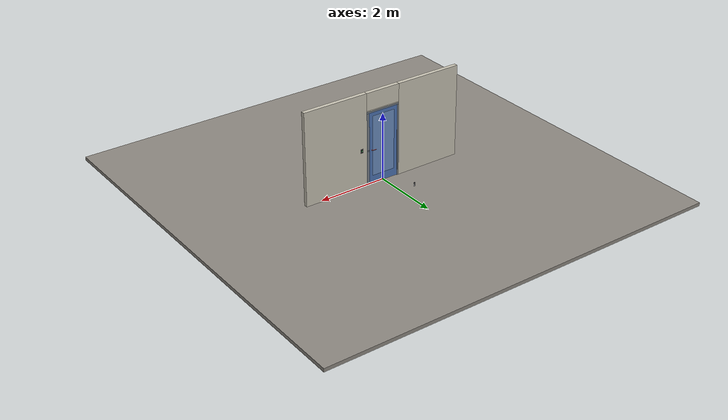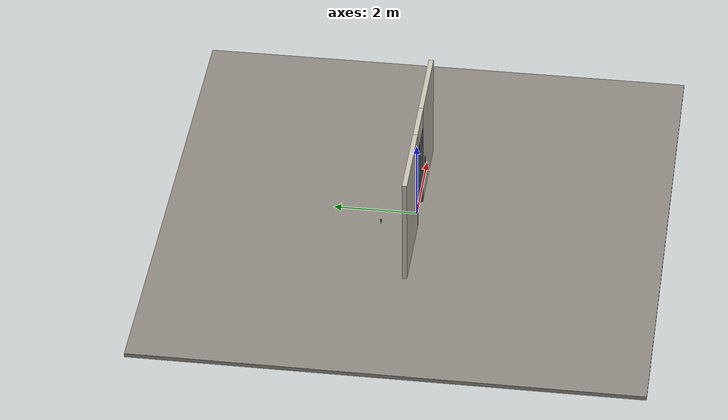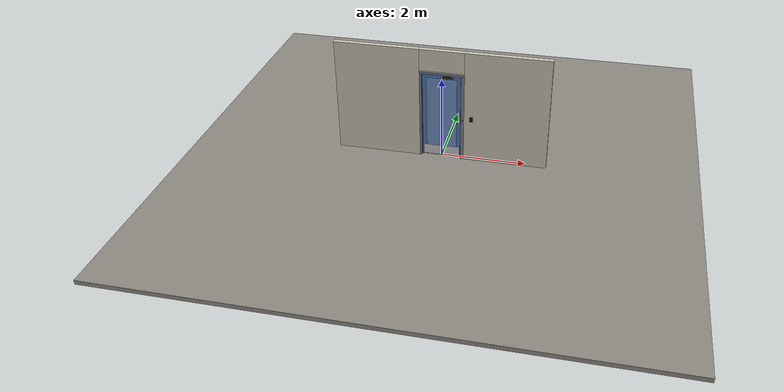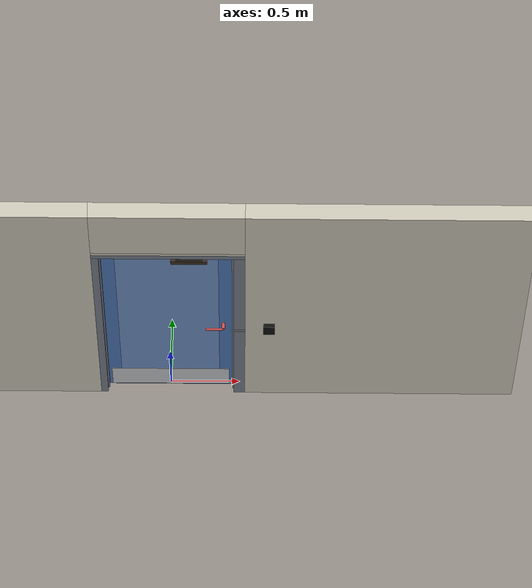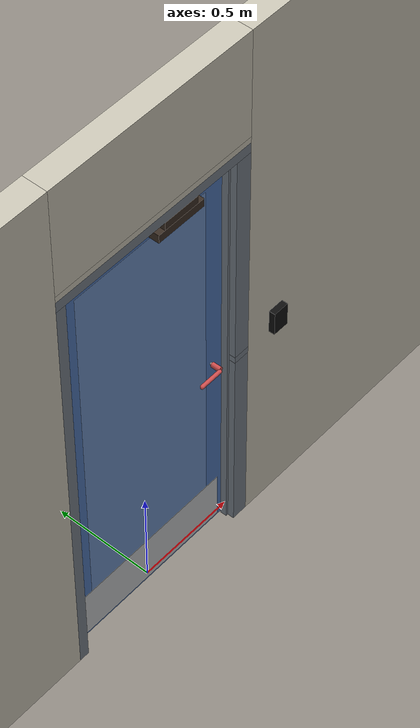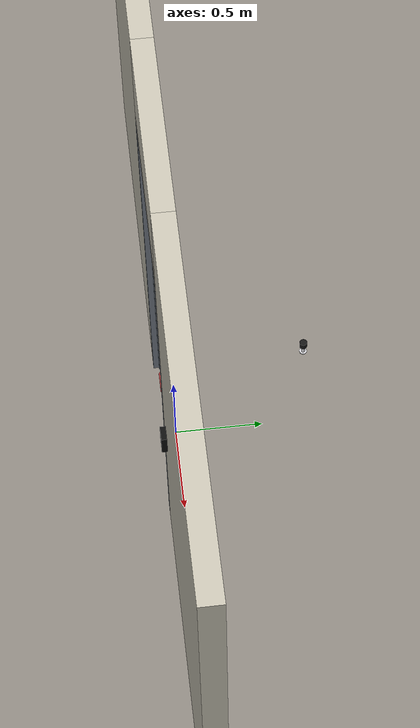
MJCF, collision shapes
<?xml version="1.0" ?>
<mujoco model="db0603_swing_single_full">
  <compiler angle="radian" meshdir="../../hardware" texturedir="../../textures" autolimits="true" inertiafromgeom="false"/>
  <option timestep="0.002" integrator="implicitfast" cone="elliptic" impratio="10" noslip_iterations="3">
    <flag multiccd="enable"/>
  </option>
  <size memory="16M"/>
  <default>
    <geom condim="4" solref="0.005 1" solimp="0.95 0.99 0.001"/>
    <joint solreflimit="0.005 1" solimplimit="0.95 0.99 0.001"/>
    <tendon solreflimit="0.005 1"/>
    <equality solref="0.002 1"/>
  </default>
  <visual>
    <headlight ambient="0.4 0.4 0.4" diffuse="0.7 0.7 0.7" specular="0.2 0.2 0.2"/>
    <quality shadowsize="4096"/>
    <map znear="0.01" zfar="60"/>
  </visual>
  <asset>
    <mesh name="hinge_e22b26c0c1" file="hinge_e22b26c0c1.obj"/>
    <mesh name="hinge_jamb_e1d088f8dc" file="hinge_jamb_e1d088f8dc.obj"/>
    <mesh name="lever_9f02b544cf" file="lever_9f02b544cf.obj"/>
    <material name="mat_floor" rgba="0.55 0.53 0.5 1" specular="0.2" shininess="0.15" reflectance="0"/>
    <material name="mat_wall" rgba="0.78 0.76 0.7 1" specular="0.2" shininess="0.1" reflectance="0"/>
    <material name="mat_leaf" rgba="0.3 0.45 0.7 1" specular="0.2" shininess="0.62" reflectance="0"/>
    <material name="mat_glass" rgba="0.85 0.92 0.95 0.25" specular="0.2" shininess="0.95" reflectance="0.1"/>
    <material name="mat_hinge" rgba="0.65 0.66 0.68 1" specular="0.74" shininess="0.5" reflectance="0.36"/>
    <material name="mat_op_nickel_satin" rgba="0.72 0.7 0.66 1" specular="0.8" shininess="0.65" reflectance="0.4"/>
    <material name="mat_trim" rgba="0.85 0.66 0.3 1" specular="0.8" shininess="0.75" reflectance="0.4"/>
    <material name="mat_bolt" rgba="0.85 0.66 0.3 1" specular="0.8" shininess="0.75" reflectance="0.4"/>
    <material name="mat_maglock" rgba="0.22 0.17 0.13 1" specular="0.8" shininess="0.6" reflectance="0.4"/>
    <material name="mat_frame" rgba="0.45 0.48 0.52 1" specular="0.32" shininess="0.6" reflectance="0.08"/>
    <material name="mat_seal" rgba="0.1 0.1 0.1 1" specular="0.2" shininess="0.1" reflectance="0"/>
    <material name="mat_kick" rgba="0.75 0.76 0.77 1" specular="0.8" shininess="0.65" reflectance="0.4"/>
    <material name="mat_wallreader" rgba="0.05 0.05 0.05 1" specular="0.38" shininess="0.3" reflectance="0.12"/>
    <material name="mat_rex" rgba="0.1 0.6 0.2 1" specular="0.2" shininess="0.6" reflectance="0"/>
    <material name="mat_bumper_stop" rgba="0.08 0.08 0.08 1" specular="0.2" shininess="0.1" reflectance="0"/>
    <material name="mat_stop_base" rgba="0.9 0.9 0.92 1" specular="0.8" shininess="0.9" reflectance="0.4"/>
    <texture name="skybox" type="skybox" builtin="gradient" rgb1="0.6 0.7 0.85" rgb2="0.9 0.92 0.95" width="256" height="256"/>
  </asset>
  <worldbody>
    <light name="sun" pos="1.5 -2.5 4" dir="-0.3 0.5 -0.8" directional="true" diffuse="0.8 0.8 0.8" specular="0.3 0.3 0.3" castshadow="true"/>
    <light name="fill" pos="-1.5 2.5 3" dir="0.3 -0.5 -0.7" directional="true" diffuse="0.35 0.35 0.4" castshadow="false"/>
    <camera name="robot_view" pos="0 -2.666313 1.812087" xyaxes="1 0 0 0 0.26963 0.962964" fovy="52"/>
    <camera name="far_view" pos="0 2.609312 1.812087" xyaxes="-1 0 0 0 -0.26963 0.962964" fovy="52"/>
    <camera name="iso" pos="2.004737 -2.244263 2.234138" xyaxes="0.741536 0.670913 0 -0.242917 0.268487 0.932151" fovy="46"/>
    <camera name="detail_handle" pos="0.4665 -0.877 1.32" xyaxes="0.97561 0.219512 0 -0.070934 0.315262 0.94635" fovy="38"/>
    <geom name="floor" type="box" size="6 6 0.05" pos="0 0 -0.05" material="mat_floor" group="0" contype="1" conaffinity="1" friction="0.8 0.005 0.0001" density="2400"/>
    <geom name="wall_left" type="box" size="0.99475 0.0575 1.3735" pos="-1.50525 -0.0285 1.3735" material="mat_wall" group="0" contype="1" conaffinity="1" friction="0.6 0.005 0.0001" density="800"/>
    <geom name="wall_right" type="box" size="0.97975 0.0575 1.3735" pos="1.52025 -0.0285 1.3735" material="mat_wall" group="0" contype="1" conaffinity="1" friction="0.6 0.005 0.0001" density="800"/>
    <geom name="wall_header" type="box" size="0.5255 0.0575 0.26" pos="0.015 -0.0285 2.487" material="mat_wall" group="0" contype="1" conaffinity="1" friction="0.6 0.005 0.0001" density="800"/>
    <geom name="hinge_0_jamb" type="mesh" mesh="hinge_jamb_e1d088f8dc" pos="-0.4575 0.029 0.259" quat="0 1 0 0" material="mat_hinge" group="1" contype="0" conaffinity="0" density="7850"/>
    <geom name="hinge_1_jamb" type="mesh" mesh="hinge_jamb_e1d088f8dc" pos="-0.4575 0.029 1.076" quat="0 1 0 0" material="mat_hinge" group="1" contype="0" conaffinity="0" density="7850"/>
    <geom name="hinge_2_jamb" type="mesh" mesh="hinge_jamb_e1d088f8dc" pos="-0.4575 0.029 1.963" quat="0 1 0 0" material="mat_hinge" group="1" contype="0" conaffinity="0" density="7850"/>
    <geom name="leaf_maglock_body" type="box" size="0.125 0.025 0.02" pos="0.1565 -0.057 2.082" material="mat_maglock" group="0" contype="1" conaffinity="1" friction="0.6 0.005 0.0001" density="2000"/>
    <geom name="leaf_maglock_bracket" type="box" size="0.09 0.025 0.0225" pos="0.1565 -0.057 2.1245" material="mat_maglock" group="1" contype="0" conaffinity="0" density="7850"/>
    <geom name="jamb_hinge" type="box" size="0.025 0.0575 1.0735" pos="-0.4855 -0.0285 1.0735" material="mat_frame" group="0" contype="1" conaffinity="1" friction="0.6 0.005 0.0001" density="300"/>
    <geom name="strike_1040_wall_n" type="box" size="0.04 0.039075 0.0167" pos="0.5005 -0.046925 1.04" material="mat_frame" group="0" contype="1" conaffinity="1" friction="0.6 0.005 0.0001" density="300"/>
    <geom name="strike_1040_wall_p" type="box" size="0.04 0.008 0.0167" pos="0.5005 0.01585 1.04" material="mat_frame" group="0" contype="1" conaffinity="1" friction="0.6 0.005 0.0001" density="300"/>
    <geom name="strike_1040_ramp" type="box" size="0.04 0.01649 0.0167" pos="0.503736 0.022234 1.04" quat="0.977148 0 0 -0.212558" material="mat_frame" group="0" contype="1" conaffinity="1" friction="0.12 0.005 0.0001" density="300"/>
    <geom name="strike_1040_back" type="box" size="0.03165 0.00785 0.0167" pos="0.50885 0 1.04" material="mat_frame" group="0" contype="1" conaffinity="1" friction="0.6 0.005 0.0001" density="300"/>
    <geom name="jamb_strike_0" type="box" size="0.04 0.0575 0.51165" pos="0.5005 -0.0285 0.51165" material="mat_frame" group="0" contype="1" conaffinity="1" friction="0.6 0.005 0.0001" density="300"/>
    <geom name="jamb_strike_1" type="box" size="0.04 0.0575 0.54515" pos="0.5005 -0.0285 1.60185" material="mat_frame" group="0" contype="1" conaffinity="1" friction="0.6 0.005 0.0001" density="300"/>
    <geom name="jamb_head" type="box" size="0.5255 0.0575 0.025" pos="0.015 -0.0285 2.172" material="mat_frame" group="0" contype="1" conaffinity="1" friction="0.6 0.005 0.0001" density="300"/>
    <geom name="head_stud" type="box" size="0.5255 0.0575 0.015" pos="0.015 -0.0285 2.212" material="mat_wall" group="0" contype="1" conaffinity="1" friction="0.6 0.005 0.0001" density="500"/>
    <geom name="stop_hinge" type="box" size="0.0055 0.016 1.0735" pos="-0.455 -0.0385 1.0735" material="mat_frame" group="0" contype="1" conaffinity="1" friction="0.6 0.005 0.0001" density="300"/>
    <geom name="stop_strike" type="box" size="0.0055 0.016 1.0735" pos="0.455 -0.0385 1.0735" material="mat_frame" group="0" contype="1" conaffinity="1" friction="0.6 0.005 0.0001" density="300"/>
    <geom name="stop_head" type="box" size="0.4605 0.016 0.0055" pos="0 -0.0385 2.1415" material="mat_frame" group="0" contype="1" conaffinity="1" friction="0.6 0.005 0.0001" density="300"/>
    <geom name="seal_hinge" type="box" size="0.004 0.004 1.0735" pos="-0.4575 -0.026 1.0735" material="mat_seal" group="1" contype="0" conaffinity="0" density="1100"/>
    <geom name="seal_strike" type="box" size="0.004 0.004 1.0735" pos="0.4575 -0.026 1.0735" material="mat_seal" group="1" contype="0" conaffinity="0" density="1100"/>
    <geom name="seal_head" type="box" size="0.4405 0.004 0.008" pos="0 -0.026 2.135" material="mat_seal" group="1" contype="0" conaffinity="0" density="1100"/>
    <geom name="wall_reader" type="box" size="0.04 0.015 0.06" pos="0.7105 -0.101 1.1" material="mat_wallreader" group="0" contype="1" conaffinity="1" friction="0.6 0.005 0.0001" density="1000"/>
    <geom name="rex_plate" type="box" size="0.04 0.003 0.06" pos="0.7105 0.032 1.1" material="mat_wallreader" group="1" contype="0" conaffinity="0" density="1000"/>
    <geom name="door_stop_base" type="cylinder" size="0.022 0.003" pos="-0.4735 0.8059 0.003" material="mat_stop_base" group="0" contype="1" conaffinity="1" friction="0.6 0.005 0.0001" density="7850"/>
    <geom name="door_stop_post" type="cylinder" size="0.012 0.0245" pos="-0.4735 0.8059 0.0305" material="mat_stop_base" group="0" contype="1" conaffinity="1" friction="0.6 0.005 0.0001" density="7850"/>
    <geom name="door_stop_bumper" type="cylinder" size="0.022 0.02" pos="-0.4735 0.8059 0.075" material="mat_bumper_stop" group="0" contype="1" conaffinity="1" friction="0.6 0.005 0.0001" density="1100"/>
    <site name="approach_point" pos="0 -1.5 0" quat="1 0 0 0" size="0.05" rgba="0.2 0.9 0.2 0.5" group="4"/>
    <site name="goal_point" pos="0 1.5 0" quat="1 0 0 0" size="0.05" rgba="0.2 0.9 0.2 0.5" group="4"/>
    <site name="door_plane_center" pos="0 0 1.0735" quat="1 0 0 0" size="0.02" rgba="0.2 0.9 0.2 0.5" group="4"/>
    <body name="rex_button" pos="0.7105 0.035 1.1">
      <inertial pos="0 0.004 0" mass="0.010053" quat="0 0 0.707107 -0.707107" diaginertia="0.000001059 0.000001059 0.000002011"/>
      <joint name="rex_button_slide" type="slide" axis="0 -1 0" limited="true" range="0 0.004" damping="1" stiffness="1500" springref="-0.004" armature="0.1"/>
      <geom name="rex_button_geom" type="cylinder" size="0.02 0.004" pos="0 0.004 0" quat="0.707107 -0.707107 0 0" material="mat_rex" group="0" contype="1" conaffinity="1" friction="0.6 0.005 0.0001" density="1000"/>
    </body>
    <body name="leaf" pos="-0.4605 0 0">
      <inertial pos="0.449607 -0.002803 0.991114" mass="43.42234" quat="-0.499437 0.504079 0.497726 0.498734" diaginertia="3.129349052 19.527300945 22.638001187"/>
      <joint name="leaf_hinge" type="hinge" axis="0 0 1" pos="0.003 0.029 0" limited="true" range="0 1.570796" solreflimit="0.02 1" damping="0.318966" frictionloss="1.949519" armature="0.02"/>
      <geom name="leaf_slab" type="box" size="0.457 0.022 1.067" pos="0.46 0 1.076" material="mat_leaf" group="0" contype="1" conaffinity="1" friction="0.4 0.005 0.0001" density="1"/>
      <geom name="leaf_glass_0" type="box" size="0.35646 0.0228 0.89628" pos="0.46 0 1.14002" material="mat_glass" group="1" contype="0" conaffinity="0" density="1"/>
      <geom name="hinge_0" type="mesh" mesh="hinge_e22b26c0c1" pos="0.003 0.029 0.259" quat="0 1 0 0" material="mat_hinge" group="1" contype="0" conaffinity="0" density="7850"/>
      <geom name="hinge_1" type="mesh" mesh="hinge_e22b26c0c1" pos="0.003 0.029 1.076" quat="0 1 0 0" material="mat_hinge" group="1" contype="0" conaffinity="0" density="7850"/>
      <geom name="hinge_2" type="mesh" mesh="hinge_e22b26c0c1" pos="0.003 0.029 1.963" quat="0 1 0 0" material="mat_hinge" group="1" contype="0" conaffinity="0" density="7850"/>
      <geom name="leaf_latch_bolt_faceplate" type="box" size="0.0006 0.01235 0.0267" pos="0.9164 0 1.04" material="mat_bolt" group="1" contype="0" conaffinity="0" density="8500"/>
      <geom name="leaf_maglock_armature" type="box" size="0.09 0.005 0.02" pos="0.617 -0.027 2.082" material="mat_maglock" group="1" contype="0" conaffinity="0" density="7800"/>
      <geom name="kick_plate_n" type="box" size="0.427 0.0008 0.125" pos="0.46 -0.0228 0.144" material="mat_kick" group="2" contype="0" conaffinity="0" density="7900"/>
      <site name="leaf_edge_mid" pos="0.917 0 1.067" quat="1 0 0 0" size="0.02" rgba="0.2 0.9 0.2 0.5" group="4"/>
      <body name="leaf_handle" pos="0.847 0 1.04">
        <inertial pos="-0.028544 0 0" mass="0.978187" quat="0 0.707107 0.707107 0" diaginertia="0.001772047 0.003604455 0.005198299"/>
        <joint name="leaf_handle_hinge" type="hinge" axis="0 -1 0" limited="true" range="0 0.96" damping="0.245624" frictionloss="0.048" stiffness="1.2" springref="-0.458333" armature="0.01"/>
        <geom name="leaf_handle_spindle" type="cylinder" size="0.006 0.03" pos="0 0 0" quat="0.707107 -0.707107 0 0" material="mat_op_nickel_satin" group="1" contype="0" conaffinity="0" density="7850"/>
        <geom name="leaf_handle_lever_n" type="mesh" mesh="lever_9f02b544cf" pos="0 -0.022 0" quat="0.707107 0.707107 0 0" material="mat_op_nickel_satin" group="1" contype="0" conaffinity="0" density="3000"/>
        <geom name="leaf_handle_lever_col_n" type="capsule" size="0.0095 0.053" pos="-0.0625 -0.077 0" quat="0.707107 0 -0.707107 0" material="mat_op_nickel_satin" group="3" contype="1" conaffinity="1" rgba="0.8 0.3 0.3 0.25" friction="0.7 0.01 0.0001" density="3000"/>
        <geom name="leaf_handle_hub_col_n" type="cylinder" size="0.012 0.022" pos="0 -0.052 0" quat="0.707107 -0.707107 0 0" material="mat_op_nickel_satin" group="3" contype="1" conaffinity="1" rgba="0.8 0.3 0.3 0.25" friction="0.6 0.005 0.0001" density="3000"/>
        <geom name="leaf_handle_lever_p" type="mesh" mesh="lever_9f02b544cf" pos="0 0.022 0" quat="-0.707107 0.707107 0 0" material="mat_op_nickel_satin" group="1" contype="0" conaffinity="0" density="3000"/>
        <geom name="leaf_handle_lever_col_p" type="capsule" size="0.0095 0.053" pos="-0.0625 0.077 0" quat="0.707107 0 -0.707107 0" material="mat_op_nickel_satin" group="3" contype="1" conaffinity="1" rgba="0.8 0.3 0.3 0.25" friction="0.7 0.01 0.0001" density="3000"/>
        <geom name="leaf_handle_hub_col_p" type="cylinder" size="0.012 0.022" pos="0 0.052 0" quat="0.707107 -0.707107 0 0" material="mat_op_nickel_satin" group="3" contype="1" conaffinity="1" rgba="0.8 0.3 0.3 0.25" friction="0.6 0.005 0.0001" density="3000"/>
        <site name="leaf_handle_grip_n" pos="-0.1 -0.077 0" quat="1 0 0 0" size="0.012" rgba="0.2 0.9 0.2 0.5" group="4"/>
        <site name="leaf_handle_grip_p" pos="-0.1 0.077 0" quat="1 0 0 0" size="0.012" rgba="0.2 0.9 0.2 0.5" group="4"/>
      </body>
      <body name="leaf_latch_bolt" pos="0.917 0 1.04">
        <inertial pos="-0.00865 0 0" mass="0.041419" quat="0.92388 -0.382683 0 0" diaginertia="0.000000798 0.000005598 0.000005598"/>
        <joint name="leaf_latch_bolt_slide" type="slide" axis="-1 0 0" limited="true" range="0 0.0127" damping="2" frictionloss="0.3" stiffness="300" springref="-0.008333" armature="0.1"/>
        <geom name="leaf_latch_bolt_capsule" type="capsule" size="0.00635 0.015" pos="-0.00865 0 0" quat="0.707107 0 0.707107 0" material="mat_bolt" group="0" contype="1" conaffinity="1" friction="0.2 0.005 0.0001" density="8500"/>
      </body>
    </body>
  </worldbody>
  <tendon>
    <fixed name="leaf_latch_bolt_coupling" limited="true" range="0 10">
      <joint joint="leaf_latch_bolt_slide" coef="1"/>
      <joint joint="leaf_handle_hinge" coef="-0.013956"/>
    </fixed>
  </tendon>
  <equality>
    <weld name="leaf_maglock" body1="leaf" body2="world" active="true"/>
  </equality>
  <sensor>
    <jointpos name="leaf_hinge_pos" joint="leaf_hinge"/>
    <jointvel name="leaf_hinge_vel" joint="leaf_hinge"/>
    <jointpos name="leaf_handle_hinge_pos" joint="leaf_handle_hinge"/>
    <jointvel name="leaf_handle_hinge_vel" joint="leaf_handle_hinge"/>
    <jointpos name="leaf_latch_bolt_slide_pos" joint="leaf_latch_bolt_slide"/>
    <jointvel name="leaf_latch_bolt_slide_vel" joint="leaf_latch_bolt_slide"/>
    <jointpos name="rex_button_slide_pos" joint="rex_button_slide"/>
    <jointvel name="rex_button_slide_vel" joint="rex_button_slide"/>
  </sensor>
</mujoco>
